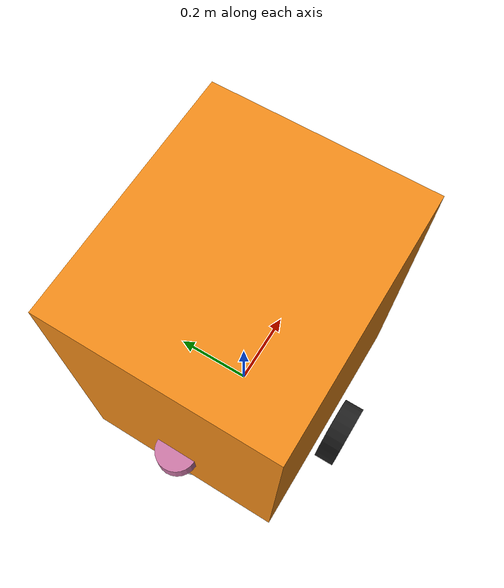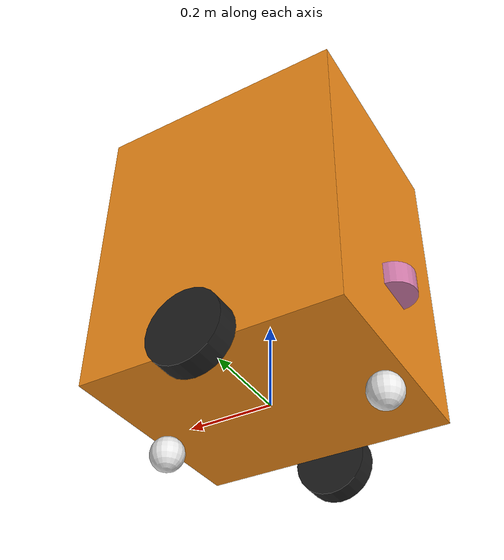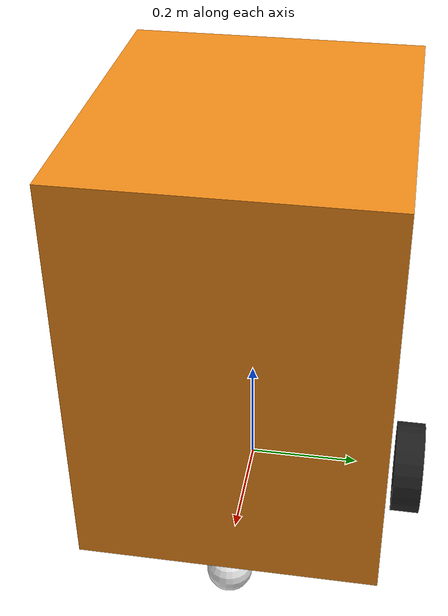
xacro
<?xml version="1.0"?>
<!-- Basic differential drive mobile base -->
<robot xmlns:xacro="http://www.ros.org/wiki/xacro" name="diffdrive_robot">
  <xacro:arg name="prefix" default="" />

  <xacro:include filename="$(find hoverboard_driver)/urdf/diffbot_description.urdf.xacro" />

  <!-- Import Rviz colors -->
  <xacro:include filename="$(find hoverboard_driver)/urdf/diffbot.materials.xacro" />

  <!-- Import diffbot ros2_control description -->
  <xacro:include filename="$(find hoverboard_driver)/ros2_control/hoverboard_driver.ros2_control.xacro" />

  <!-- Import lidar description -->

  <xacro:diffbot prefix="$(arg prefix)" />

  <xacro:hoverboard_driver_ros2_control
    name="DiffBot" prefix="$(arg prefix)" />

</robot>

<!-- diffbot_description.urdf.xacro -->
<robot xmlns:xacro="http://www.ros.org/wiki/xacro">

  <xacro:macro name="diffbot" params="prefix">

  <!-- Constants for robot dimensions -->
  <xacro:property name="PI" value="3.1415926535897931"/>
  <xacro:property name="base_mass" value="1.0" /> <!-- arbitrary value for base mass -->
  <xacro:property name="base_width" value="0.6" />
  <xacro:property name="base_length" value="0.52" />
  <xacro:property name="base_height" value="0.72" />
  <xacro:property name="wheel_mass" value="0.3" /> <!-- arbitrary value for wheel mass -->
  <xacro:property name="wheel_len" value="0.053" />
  <xacro:property name="wheel_radius" value="0.085" />
  <xacro:property name="caster_wheel_mass" value="0.1" /> <!-- arbitrary value for caster wheel mass -->
  <xacro:property name="caster_wheel_radius" value="0.04" />
  <xacro:property name="z_offset" value="0" /> <!-- Space btw top of beam and the each joint -->

  <!-- Base Link -->
  <link name="${prefix}base_link">
    <collision>
      <origin xyz="0 0 0" rpy="0 0 0"/>
      <geometry>
        <box size="${base_width} ${base_length} ${base_height}"/>
      </geometry>
    </collision>

    <visual>
      <origin xyz="0 0 ${base_height/2}" rpy="0 0 0"/>
      <geometry>
        <box size="${base_width} ${base_length} ${base_height}"/>
      </geometry>
      <material name="orange"/>
    </visual>

    <inertial>
      <origin xyz="0 0 0" rpy="0 0 0"/>
      <mass value="${base_mass}"/>
      <inertia
        ixx="${base_mass / 12.0 * (base_length*base_length + base_height*base_height)}" ixy="0.0" ixz="0.0"
        iyy="${base_mass / 12.0 * (base_height*base_height + base_width*base_width)}" iyz="0.0"
        izz="${base_mass / 12.0 * (base_width*base_width + base_length*base_length)}"/>
      </inertial>
    </link>

    <joint name="${prefix}left_wheel_joint" type="continuous">
      <parent link="${prefix}base_link"/>
      <child link="${prefix}left_wheel"/>
      <origin xyz="0 -${base_width/2} ${z_offset}" rpy="0 0 0"/>
      <axis xyz="0 1 0"/>
      <dynamics damping="0.2"/>
    </joint>

    <!-- left wheel Link -->
    <link name="${prefix}left_wheel">
      <collision>
        <origin xyz="0 0 0" rpy="${PI/2} 0 0"/>
        <geometry>
          <cylinder length="${wheel_len}" radius="${wheel_radius}"/>
        </geometry>
      </collision>

      <visual>
        <origin xyz="0 0 0" rpy="${PI/2} 0 0"/>
        <geometry>
          <cylinder length="${wheel_len}" radius="${wheel_radius}"/>
        </geometry>
        <material name="black"/>
      </visual>

      <inertial>
        <origin xyz="0 0 0" rpy="${PI/2} 0 0"/>
        <mass value="${wheel_mass}"/>
        <inertia
          ixx="${wheel_mass / 12.0 * (3*wheel_radius*wheel_radius + wheel_len*wheel_len)}" ixy="0.0" ixz="0.0"
          iyy="${wheel_mass / 12.0 * (3*wheel_radius*wheel_radius + wheel_len*wheel_len)}" iyz="0.0"
          izz="${wheel_mass / 2.0 * wheel_radius*wheel_radius}"/>
        </inertial>
      </link>

    <joint name="${prefix}right_wheel_joint" type="continuous">
      <parent link="${prefix}base_link"/>
      <child link="${prefix}right_wheel"/>
      <origin xyz="0 ${base_width/2} ${z_offset}" rpy="0 0 0"/>
      <axis xyz="0 1 0"/>
      <dynamics damping="0.2"/>
    </joint>

    <!-- right wheel Link -->
    <link name="${prefix}right_wheel">
      <collision>
        <origin xyz="0 0 0" rpy="${PI/2} 0 0"/>
        <geometry>
          <cylinder length="${wheel_len}" radius="${wheel_radius}"/>
        </geometry>
      </collision>

      <visual>
        <origin xyz="0 0 0" rpy="${PI/2} 0 0"/>
        <geometry>
          <cylinder length="${wheel_len}" radius="${wheel_radius}"/>
        </geometry>
        <material name="black"/>
      </visual>

      <inertial>
        <origin xyz="0 0 0" rpy="${PI/2} 0 0"/>
        <mass value="${wheel_mass}"/>
        <inertia
          ixx="${wheel_mass / 12.0 * (3*wheel_radius*wheel_radius + wheel_len*wheel_len)}" ixy="0.0" ixz="0.0"
          iyy="${wheel_mass / 12.0 * (3*wheel_radius*wheel_radius + wheel_len*wheel_len)}" iyz="0.0"
          izz="${wheel_mass / 2.0 * wheel_radius*wheel_radius}"/>
        </inertial>
      </link>

    <joint name="${prefix}caster_frontal_wheel_joint" type="fixed">
      <parent link="${prefix}base_link"/>
      <child link="${prefix}caster_frontal_wheel"/>
      <origin xyz="${base_width/2 - caster_wheel_radius} 0 -0.045" rpy="0 0 0"/>
    </joint>

    <!-- caster frontal wheel Link -->
    <link name="${prefix}caster_frontal_wheel">
      <collision>
        <origin xyz="0 0 0" rpy="0 0 0"/>
        <geometry>
          <sphere radius="${caster_wheel_radius}"/>
        </geometry>
      </collision>

      <visual>
        <origin xyz="0 0 0" rpy="0 0 0"/>
        <geometry>
          <sphere radius="${caster_wheel_radius}"/>
        </geometry>
        <material name="white"/>
      </visual>

      <inertial>
        <origin xyz="0 0 0" rpy="0 0 0"/>
        <mass value="${caster_wheel_mass}"/>
        <inertia
          ixx="${caster_wheel_mass * 0.4 * (caster_wheel_radius * caster_wheel_radius)}" ixy="0.0" ixz="0.0"
          iyy="${caster_wheel_mass * 0.4 * (caster_wheel_radius * caster_wheel_radius)}" iyz="0.0"
          izz="${caster_wheel_mass * 0.4 * (caster_wheel_radius * caster_wheel_radius)}"/>
        </inertial>
      </link>

    <joint name="${prefix}caster_rear_wheel_joint" type="fixed">
      <parent link="${prefix}base_link"/>
      <child link="${prefix}caster_rear_wheel"/>
      <origin xyz="${-base_width/2 + caster_wheel_radius} 0 -0.045" rpy="0 0 0"/>
    </joint>

    <!-- caster rear wheel Link -->
    <link name="${prefix}caster_rear_wheel">
      <collision>
        <origin xyz="0 0 0" rpy="0 0 0"/>
        <geometry>
          <sphere radius="${caster_wheel_radius}"/>
        </geometry>
      </collision>

      <visual>
        <origin xyz="0 0 0" rpy="0 0 0"/>
        <geometry>
          <sphere radius="${caster_wheel_radius}"/>
        </geometry>
        <material name="white"/>
      </visual>

      <inertial>
        <origin xyz="0 0 0" rpy="0 0 0"/>
        <mass value="${caster_wheel_mass}"/>
        <inertia
          ixx="${caster_wheel_mass * 0.4 * (caster_wheel_radius * caster_wheel_radius)}" ixy="0.0" ixz="0.0"
          iyy="${caster_wheel_mass * 0.4 * (caster_wheel_radius * caster_wheel_radius)}" iyz="0.0"
          izz="${caster_wheel_mass * 0.4 * (caster_wheel_radius * caster_wheel_radius)}"/>
        </inertial>
      </link>

  <!-- BASE_FOOTPRINT LINK -->
  <joint name="base_footprint_joint" type="fixed">
    <parent link="${prefix}base_link"/>
    <child link="base_footprint"/>
    <origin xyz="0 0 0" rpy="0 0 0"/>
  </joint>

  <link name="base_footprint">
  </link>

<joint name="lidar_joint" type="fixed">
  <parent link="${prefix}base_link"/>
  <child link="lidar_link"/>
  <origin xyz="-0.30 0 0.20" rpy="0 0 0"/>
</joint>

  <link name="lidar_link">
    <inertial>
      <origin xyz="0 0 0" rpy="0 0 0"/>
      <mass value="0.125"/>
      <inertia ixx="0.001"  ixy="0"  ixz="0" iyy="0.001" iyz="0" izz="0.001" />
    </inertial>

    <collision>
      <origin xyz="0 0 0" rpy="0 0 0"/>
      <geometry>
        <cylinder radius="0.0508" length="0.055"/>
      </geometry>
    </collision>

    <visual>
      <origin xyz="0 0 0" rpy="0 0 0"/>
      <geometry>
        <cylinder radius="0.0508" length="0.055"/>
      </geometry>
    </visual>
  </link>

  </xacro:macro>

</robot>
